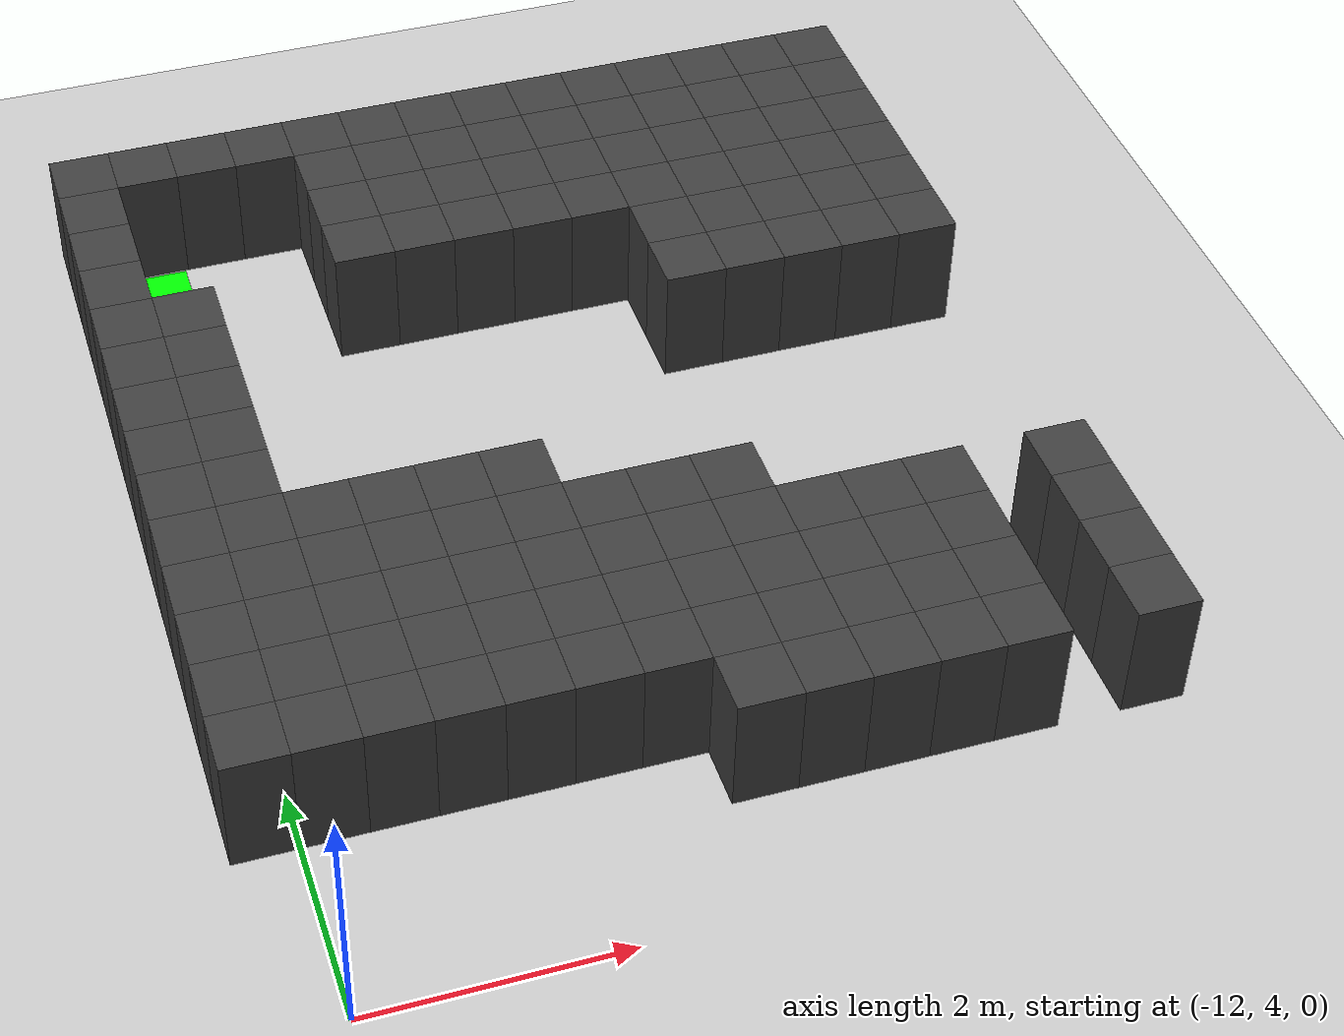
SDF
<sdf version="1.7">
 <world name="map_12356">
  <model name="ground_plane">
   <static>true</static>
   <link name="link">
    <collision name="collision">
     <geometry><plane><normal>0 0 1</normal><size>200 200</size></plane></geometry>
    </collision>
    <visual name="visual">
     <geometry><plane><normal>0 0 1</normal><size>200 200</size></plane></geometry>
     <material><ambient>0.8 0.8 0.8 1</ambient><diffuse>0.8 0.8 0.8 1</diffuse></material>
    </visual>
   </link>
  </model>
  <model name="maze_environment">
   <static>true</static>
   <link name="wall_0">
    <pose>-12.250 12.250 0.500 0 0 0</pose>
    <collision name="col"><geometry><box><size>0.5 0.5 1.0</size></box></geometry></collision>
    <visual name="vis">
     <geometry><box><size>0.5 0.5 1.0</size></box></geometry>
     <material><ambient>0.15 0.15 0.15 1</ambient><diffuse>0.25 0.25 0.25 1</diffuse></material>
    </visual>
   </link>
   <link name="wall_1">
    <pose>-11.750 12.250 0.500 0 0 0</pose>
    <collision name="col"><geometry><box><size>0.5 0.5 1.0</size></box></geometry></collision>
    <visual name="vis">
     <geometry><box><size>0.5 0.5 1.0</size></box></geometry>
     <material><ambient>0.15 0.15 0.15 1</ambient><diffuse>0.25 0.25 0.25 1</diffuse></material>
    </visual>
   </link>
   <link name="wall_2">
    <pose>-11.250 12.250 0.500 0 0 0</pose>
    <collision name="col"><geometry><box><size>0.5 0.5 1.0</size></box></geometry></collision>
    <visual name="vis">
     <geometry><box><size>0.5 0.5 1.0</size></box></geometry>
     <material><ambient>0.15 0.15 0.15 1</ambient><diffuse>0.25 0.25 0.25 1</diffuse></material>
    </visual>
   </link>
   <link name="wall_3">
    <pose>-10.750 12.250 0.500 0 0 0</pose>
    <collision name="col"><geometry><box><size>0.5 0.5 1.0</size></box></geometry></collision>
    <visual name="vis">
     <geometry><box><size>0.5 0.5 1.0</size></box></geometry>
     <material><ambient>0.15 0.15 0.15 1</ambient><diffuse>0.25 0.25 0.25 1</diffuse></material>
    </visual>
   </link>
   <link name="wall_4">
    <pose>-10.250 12.250 0.500 0 0 0</pose>
    <collision name="col"><geometry><box><size>0.5 0.5 1.0</size></box></geometry></collision>
    <visual name="vis">
     <geometry><box><size>0.5 0.5 1.0</size></box></geometry>
     <material><ambient>0.15 0.15 0.15 1</ambient><diffuse>0.25 0.25 0.25 1</diffuse></material>
    </visual>
   </link>
   <link name="wall_5">
    <pose>-9.750 12.250 0.500 0 0 0</pose>
    <collision name="col"><geometry><box><size>0.5 0.5 1.0</size></box></geometry></collision>
    <visual name="vis">
     <geometry><box><size>0.5 0.5 1.0</size></box></geometry>
     <material><ambient>0.15 0.15 0.15 1</ambient><diffuse>0.25 0.25 0.25 1</diffuse></material>
    </visual>
   </link>
   <link name="wall_6">
    <pose>-9.250 12.250 0.500 0 0 0</pose>
    <collision name="col"><geometry><box><size>0.5 0.5 1.0</size></box></geometry></collision>
    <visual name="vis">
     <geometry><box><size>0.5 0.5 1.0</size></box></geometry>
     <material><ambient>0.15 0.15 0.15 1</ambient><diffuse>0.25 0.25 0.25 1</diffuse></material>
    </visual>
   </link>
   <link name="wall_7">
    <pose>-8.750 12.250 0.500 0 0 0</pose>
    <collision name="col"><geometry><box><size>0.5 0.5 1.0</size></box></geometry></collision>
    <visual name="vis">
     <geometry><box><size>0.5 0.5 1.0</size></box></geometry>
     <material><ambient>0.15 0.15 0.15 1</ambient><diffuse>0.25 0.25 0.25 1</diffuse></material>
    </visual>
   </link>
   <link name="wall_8">
    <pose>-8.250 12.250 0.500 0 0 0</pose>
    <collision name="col"><geometry><box><size>0.5 0.5 1.0</size></box></geometry></collision>
    <visual name="vis">
     <geometry><box><size>0.5 0.5 1.0</size></box></geometry>
     <material><ambient>0.15 0.15 0.15 1</ambient><diffuse>0.25 0.25 0.25 1</diffuse></material>
    </visual>
   </link>
   <link name="wall_9">
    <pose>-7.750 12.250 0.500 0 0 0</pose>
    <collision name="col"><geometry><box><size>0.5 0.5 1.0</size></box></geometry></collision>
    <visual name="vis">
     <geometry><box><size>0.5 0.5 1.0</size></box></geometry>
     <material><ambient>0.15 0.15 0.15 1</ambient><diffuse>0.25 0.25 0.25 1</diffuse></material>
    </visual>
   </link>
   <link name="wall_10">
    <pose>-7.250 12.250 0.500 0 0 0</pose>
    <collision name="col"><geometry><box><size>0.5 0.5 1.0</size></box></geometry></collision>
    <visual name="vis">
     <geometry><box><size>0.5 0.5 1.0</size></box></geometry>
     <material><ambient>0.15 0.15 0.15 1</ambient><diffuse>0.25 0.25 0.25 1</diffuse></material>
    </visual>
   </link>
   <link name="wall_11">
    <pose>-6.750 12.250 0.500 0 0 0</pose>
    <collision name="col"><geometry><box><size>0.5 0.5 1.0</size></box></geometry></collision>
    <visual name="vis">
     <geometry><box><size>0.5 0.5 1.0</size></box></geometry>
     <material><ambient>0.15 0.15 0.15 1</ambient><diffuse>0.25 0.25 0.25 1</diffuse></material>
    </visual>
   </link>
   <link name="wall_12">
    <pose>-6.250 12.250 0.500 0 0 0</pose>
    <collision name="col"><geometry><box><size>0.5 0.5 1.0</size></box></geometry></collision>
    <visual name="vis">
     <geometry><box><size>0.5 0.5 1.0</size></box></geometry>
     <material><ambient>0.15 0.15 0.15 1</ambient><diffuse>0.25 0.25 0.25 1</diffuse></material>
    </visual>
   </link>
   <link name="wall_13">
    <pose>-5.750 12.250 0.500 0 0 0</pose>
    <collision name="col"><geometry><box><size>0.5 0.5 1.0</size></box></geometry></collision>
    <visual name="vis">
     <geometry><box><size>0.5 0.5 1.0</size></box></geometry>
     <material><ambient>0.15 0.15 0.15 1</ambient><diffuse>0.25 0.25 0.25 1</diffuse></material>
    </visual>
   </link>
   <link name="wall_50">
    <pose>-12.250 11.750 0.500 0 0 0</pose>
    <collision name="col"><geometry><box><size>0.5 0.5 1.0</size></box></geometry></collision>
    <visual name="vis">
     <geometry><box><size>0.5 0.5 1.0</size></box></geometry>
     <material><ambient>0.15 0.15 0.15 1</ambient><diffuse>0.25 0.25 0.25 1</diffuse></material>
    </visual>
   </link>
   <link name="wall_51">
    <pose>-10.250 11.750 0.500 0 0 0</pose>
    <collision name="col"><geometry><box><size>0.5 0.5 1.0</size></box></geometry></collision>
    <visual name="vis">
     <geometry><box><size>0.5 0.5 1.0</size></box></geometry>
     <material><ambient>0.15 0.15 0.15 1</ambient><diffuse>0.25 0.25 0.25 1</diffuse></material>
    </visual>
   </link>
   <link name="wall_52">
    <pose>-9.750 11.750 0.500 0 0 0</pose>
    <collision name="col"><geometry><box><size>0.5 0.5 1.0</size></box></geometry></collision>
    <visual name="vis">
     <geometry><box><size>0.5 0.5 1.0</size></box></geometry>
     <material><ambient>0.15 0.15 0.15 1</ambient><diffuse>0.25 0.25 0.25 1</diffuse></material>
    </visual>
   </link>
   <link name="wall_53">
    <pose>-9.250 11.750 0.500 0 0 0</pose>
    <collision name="col"><geometry><box><size>0.5 0.5 1.0</size></box></geometry></collision>
    <visual name="vis">
     <geometry><box><size>0.5 0.5 1.0</size></box></geometry>
     <material><ambient>0.15 0.15 0.15 1</ambient><diffuse>0.25 0.25 0.25 1</diffuse></material>
    </visual>
   </link>
   <link name="wall_54">
    <pose>-8.750 11.750 0.500 0 0 0</pose>
    <collision name="col"><geometry><box><size>0.5 0.5 1.0</size></box></geometry></collision>
    <visual name="vis">
     <geometry><box><size>0.5 0.5 1.0</size></box></geometry>
     <material><ambient>0.15 0.15 0.15 1</ambient><diffuse>0.25 0.25 0.25 1</diffuse></material>
    </visual>
   </link>
   <link name="wall_55">
    <pose>-8.250 11.750 0.500 0 0 0</pose>
    <collision name="col"><geometry><box><size>0.5 0.5 1.0</size></box></geometry></collision>
    <visual name="vis">
     <geometry><box><size>0.5 0.5 1.0</size></box></geometry>
     <material><ambient>0.15 0.15 0.15 1</ambient><diffuse>0.25 0.25 0.25 1</diffuse></material>
    </visual>
   </link>
   <link name="wall_56">
    <pose>-7.750 11.750 0.500 0 0 0</pose>
    <collision name="col"><geometry><box><size>0.5 0.5 1.0</size></box></geometry></collision>
    <visual name="vis">
     <geometry><box><size>0.5 0.5 1.0</size></box></geometry>
     <material><ambient>0.15 0.15 0.15 1</ambient><diffuse>0.25 0.25 0.25 1</diffuse></material>
    </visual>
   </link>
   <link name="wall_57">
    <pose>-7.250 11.750 0.500 0 0 0</pose>
    <collision name="col"><geometry><box><size>0.5 0.5 1.0</size></box></geometry></collision>
    <visual name="vis">
     <geometry><box><size>0.5 0.5 1.0</size></box></geometry>
     <material><ambient>0.15 0.15 0.15 1</ambient><diffuse>0.25 0.25 0.25 1</diffuse></material>
    </visual>
   </link>
   <link name="wall_58">
    <pose>-6.750 11.750 0.500 0 0 0</pose>
    <collision name="col"><geometry><box><size>0.5 0.5 1.0</size></box></geometry></collision>
    <visual name="vis">
     <geometry><box><size>0.5 0.5 1.0</size></box></geometry>
     <material><ambient>0.15 0.15 0.15 1</ambient><diffuse>0.25 0.25 0.25 1</diffuse></material>
    </visual>
   </link>
   <link name="wall_59">
    <pose>-6.250 11.750 0.500 0 0 0</pose>
    <collision name="col"><geometry><box><size>0.5 0.5 1.0</size></box></geometry></collision>
    <visual name="vis">
     <geometry><box><size>0.5 0.5 1.0</size></box></geometry>
     <material><ambient>0.15 0.15 0.15 1</ambient><diffuse>0.25 0.25 0.25 1</diffuse></material>
    </visual>
   </link>
   <link name="wall_60">
    <pose>-5.750 11.750 0.500 0 0 0</pose>
    <collision name="col"><geometry><box><size>0.5 0.5 1.0</size></box></geometry></collision>
    <visual name="vis">
     <geometry><box><size>0.5 0.5 1.0</size></box></geometry>
     <material><ambient>0.15 0.15 0.15 1</ambient><diffuse>0.25 0.25 0.25 1</diffuse></material>
    </visual>
   </link>
   <link name="wall_97">
    <pose>-12.250 11.250 0.500 0 0 0</pose>
    <collision name="col"><geometry><box><size>0.5 0.5 1.0</size></box></geometry></collision>
    <visual name="vis">
     <geometry><box><size>0.5 0.5 1.0</size></box></geometry>
     <material><ambient>0.15 0.15 0.15 1</ambient><diffuse>0.25 0.25 0.25 1</diffuse></material>
    </visual>
   </link>
   <link name="wall_98">
    <pose>-10.250 11.250 0.500 0 0 0</pose>
    <collision name="col"><geometry><box><size>0.5 0.5 1.0</size></box></geometry></collision>
    <visual name="vis">
     <geometry><box><size>0.5 0.5 1.0</size></box></geometry>
     <material><ambient>0.15 0.15 0.15 1</ambient><diffuse>0.25 0.25 0.25 1</diffuse></material>
    </visual>
   </link>
   <link name="wall_99">
    <pose>-9.750 11.250 0.500 0 0 0</pose>
    <collision name="col"><geometry><box><size>0.5 0.5 1.0</size></box></geometry></collision>
    <visual name="vis">
     <geometry><box><size>0.5 0.5 1.0</size></box></geometry>
     <material><ambient>0.15 0.15 0.15 1</ambient><diffuse>0.25 0.25 0.25 1</diffuse></material>
    </visual>
   </link>
   <link name="wall_100">
    <pose>-9.250 11.250 0.500 0 0 0</pose>
    <collision name="col"><geometry><box><size>0.5 0.5 1.0</size></box></geometry></collision>
    <visual name="vis">
     <geometry><box><size>0.5 0.5 1.0</size></box></geometry>
     <material><ambient>0.15 0.15 0.15 1</ambient><diffuse>0.25 0.25 0.25 1</diffuse></material>
    </visual>
   </link>
   <link name="wall_101">
    <pose>-8.750 11.250 0.500 0 0 0</pose>
    <collision name="col"><geometry><box><size>0.5 0.5 1.0</size></box></geometry></collision>
    <visual name="vis">
     <geometry><box><size>0.5 0.5 1.0</size></box></geometry>
     <material><ambient>0.15 0.15 0.15 1</ambient><diffuse>0.25 0.25 0.25 1</diffuse></material>
    </visual>
   </link>
   <link name="wall_102">
    <pose>-8.250 11.250 0.500 0 0 0</pose>
    <collision name="col"><geometry><box><size>0.5 0.5 1.0</size></box></geometry></collision>
    <visual name="vis">
     <geometry><box><size>0.5 0.5 1.0</size></box></geometry>
     <material><ambient>0.15 0.15 0.15 1</ambient><diffuse>0.25 0.25 0.25 1</diffuse></material>
    </visual>
   </link>
   <link name="wall_103">
    <pose>-7.750 11.250 0.500 0 0 0</pose>
    <collision name="col"><geometry><box><size>0.5 0.5 1.0</size></box></geometry></collision>
    <visual name="vis">
     <geometry><box><size>0.5 0.5 1.0</size></box></geometry>
     <material><ambient>0.15 0.15 0.15 1</ambient><diffuse>0.25 0.25 0.25 1</diffuse></material>
    </visual>
   </link>
   <link name="wall_104">
    <pose>-7.250 11.250 0.500 0 0 0</pose>
    <collision name="col"><geometry><box><size>0.5 0.5 1.0</size></box></geometry></collision>
    <visual name="vis">
     <geometry><box><size>0.5 0.5 1.0</size></box></geometry>
     <material><ambient>0.15 0.15 0.15 1</ambient><diffuse>0.25 0.25 0.25 1</diffuse></material>
    </visual>
   </link>
   <link name="wall_105">
    <pose>-6.750 11.250 0.500 0 0 0</pose>
    <collision name="col"><geometry><box><size>0.5 0.5 1.0</size></box></geometry></collision>
    <visual name="vis">
     <geometry><box><size>0.5 0.5 1.0</size></box></geometry>
     <material><ambient>0.15 0.15 0.15 1</ambient><diffuse>0.25 0.25 0.25 1</diffuse></material>
    </visual>
   </link>
   <link name="wall_106">
    <pose>-6.250 11.250 0.500 0 0 0</pose>
    <collision name="col"><geometry><box><size>0.5 0.5 1.0</size></box></geometry></collision>
    <visual name="vis">
     <geometry><box><size>0.5 0.5 1.0</size></box></geometry>
     <material><ambient>0.15 0.15 0.15 1</ambient><diffuse>0.25 0.25 0.25 1</diffuse></material>
    </visual>
   </link>
   <link name="wall_107">
    <pose>-5.750 11.250 0.500 0 0 0</pose>
    <collision name="col"><geometry><box><size>0.5 0.5 1.0</size></box></geometry></collision>
    <visual name="vis">
     <geometry><box><size>0.5 0.5 1.0</size></box></geometry>
     <material><ambient>0.15 0.15 0.15 1</ambient><diffuse>0.25 0.25 0.25 1</diffuse></material>
    </visual>
   </link>
   <link name="wall_138">
    <pose>-12.250 10.750 0.500 0 0 0</pose>
    <collision name="col"><geometry><box><size>0.5 0.5 1.0</size></box></geometry></collision>
    <visual name="vis">
     <geometry><box><size>0.5 0.5 1.0</size></box></geometry>
     <material><ambient>0.15 0.15 0.15 1</ambient><diffuse>0.25 0.25 0.25 1</diffuse></material>
    </visual>
   </link>
   <link name="wall_139">
    <pose>-10.250 10.750 0.500 0 0 0</pose>
    <collision name="col"><geometry><box><size>0.5 0.5 1.0</size></box></geometry></collision>
    <visual name="vis">
     <geometry><box><size>0.5 0.5 1.0</size></box></geometry>
     <material><ambient>0.15 0.15 0.15 1</ambient><diffuse>0.25 0.25 0.25 1</diffuse></material>
    </visual>
   </link>
   <link name="wall_140">
    <pose>-9.750 10.750 0.500 0 0 0</pose>
    <collision name="col"><geometry><box><size>0.5 0.5 1.0</size></box></geometry></collision>
    <visual name="vis">
     <geometry><box><size>0.5 0.5 1.0</size></box></geometry>
     <material><ambient>0.15 0.15 0.15 1</ambient><diffuse>0.25 0.25 0.25 1</diffuse></material>
    </visual>
   </link>
   <link name="wall_141">
    <pose>-9.250 10.750 0.500 0 0 0</pose>
    <collision name="col"><geometry><box><size>0.5 0.5 1.0</size></box></geometry></collision>
    <visual name="vis">
     <geometry><box><size>0.5 0.5 1.0</size></box></geometry>
     <material><ambient>0.15 0.15 0.15 1</ambient><diffuse>0.25 0.25 0.25 1</diffuse></material>
    </visual>
   </link>
   <link name="wall_142">
    <pose>-8.750 10.750 0.500 0 0 0</pose>
    <collision name="col"><geometry><box><size>0.5 0.5 1.0</size></box></geometry></collision>
    <visual name="vis">
     <geometry><box><size>0.5 0.5 1.0</size></box></geometry>
     <material><ambient>0.15 0.15 0.15 1</ambient><diffuse>0.25 0.25 0.25 1</diffuse></material>
    </visual>
   </link>
   <link name="wall_143">
    <pose>-8.250 10.750 0.500 0 0 0</pose>
    <collision name="col"><geometry><box><size>0.5 0.5 1.0</size></box></geometry></collision>
    <visual name="vis">
     <geometry><box><size>0.5 0.5 1.0</size></box></geometry>
     <material><ambient>0.15 0.15 0.15 1</ambient><diffuse>0.25 0.25 0.25 1</diffuse></material>
    </visual>
   </link>
   <link name="wall_144">
    <pose>-7.750 10.750 0.500 0 0 0</pose>
    <collision name="col"><geometry><box><size>0.5 0.5 1.0</size></box></geometry></collision>
    <visual name="vis">
     <geometry><box><size>0.5 0.5 1.0</size></box></geometry>
     <material><ambient>0.15 0.15 0.15 1</ambient><diffuse>0.25 0.25 0.25 1</diffuse></material>
    </visual>
   </link>
   <link name="wall_145">
    <pose>-7.250 10.750 0.500 0 0 0</pose>
    <collision name="col"><geometry><box><size>0.5 0.5 1.0</size></box></geometry></collision>
    <visual name="vis">
     <geometry><box><size>0.5 0.5 1.0</size></box></geometry>
     <material><ambient>0.15 0.15 0.15 1</ambient><diffuse>0.25 0.25 0.25 1</diffuse></material>
    </visual>
   </link>
   <link name="wall_146">
    <pose>-6.750 10.750 0.500 0 0 0</pose>
    <collision name="col"><geometry><box><size>0.5 0.5 1.0</size></box></geometry></collision>
    <visual name="vis">
     <geometry><box><size>0.5 0.5 1.0</size></box></geometry>
     <material><ambient>0.15 0.15 0.15 1</ambient><diffuse>0.25 0.25 0.25 1</diffuse></material>
    </visual>
   </link>
   <link name="wall_147">
    <pose>-6.250 10.750 0.500 0 0 0</pose>
    <collision name="col"><geometry><box><size>0.5 0.5 1.0</size></box></geometry></collision>
    <visual name="vis">
     <geometry><box><size>0.5 0.5 1.0</size></box></geometry>
     <material><ambient>0.15 0.15 0.15 1</ambient><diffuse>0.25 0.25 0.25 1</diffuse></material>
    </visual>
   </link>
   <link name="wall_148">
    <pose>-5.750 10.750 0.500 0 0 0</pose>
    <collision name="col"><geometry><box><size>0.5 0.5 1.0</size></box></geometry></collision>
    <visual name="vis">
     <geometry><box><size>0.5 0.5 1.0</size></box></geometry>
     <material><ambient>0.15 0.15 0.15 1</ambient><diffuse>0.25 0.25 0.25 1</diffuse></material>
    </visual>
   </link>
   <link name="wall_179">
    <pose>-12.250 10.250 0.500 0 0 0</pose>
    <collision name="col"><geometry><box><size>0.5 0.5 1.0</size></box></geometry></collision>
    <visual name="vis">
     <geometry><box><size>0.5 0.5 1.0</size></box></geometry>
     <material><ambient>0.15 0.15 0.15 1</ambient><diffuse>0.25 0.25 0.25 1</diffuse></material>
    </visual>
   </link>
   <link name="wall_180">
    <pose>-11.750 10.250 0.500 0 0 0</pose>
    <collision name="col"><geometry><box><size>0.5 0.5 1.0</size></box></geometry></collision>
    <visual name="vis">
     <geometry><box><size>0.5 0.5 1.0</size></box></geometry>
     <material><ambient>0.15 0.15 0.15 1</ambient><diffuse>0.25 0.25 0.25 1</diffuse></material>
    </visual>
   </link>
   <link name="wall_181">
    <pose>-7.750 10.250 0.500 0 0 0</pose>
    <collision name="col"><geometry><box><size>0.5 0.5 1.0</size></box></geometry></collision>
    <visual name="vis">
     <geometry><box><size>0.5 0.5 1.0</size></box></geometry>
     <material><ambient>0.15 0.15 0.15 1</ambient><diffuse>0.25 0.25 0.25 1</diffuse></material>
    </visual>
   </link>
   <link name="wall_182">
    <pose>-7.250 10.250 0.500 0 0 0</pose>
    <collision name="col"><geometry><box><size>0.5 0.5 1.0</size></box></geometry></collision>
    <visual name="vis">
     <geometry><box><size>0.5 0.5 1.0</size></box></geometry>
     <material><ambient>0.15 0.15 0.15 1</ambient><diffuse>0.25 0.25 0.25 1</diffuse></material>
    </visual>
   </link>
   <link name="wall_183">
    <pose>-6.750 10.250 0.500 0 0 0</pose>
    <collision name="col"><geometry><box><size>0.5 0.5 1.0</size></box></geometry></collision>
    <visual name="vis">
     <geometry><box><size>0.5 0.5 1.0</size></box></geometry>
     <material><ambient>0.15 0.15 0.15 1</ambient><diffuse>0.25 0.25 0.25 1</diffuse></material>
    </visual>
   </link>
   <link name="wall_184">
    <pose>-6.250 10.250 0.500 0 0 0</pose>
    <collision name="col"><geometry><box><size>0.5 0.5 1.0</size></box></geometry></collision>
    <visual name="vis">
     <geometry><box><size>0.5 0.5 1.0</size></box></geometry>
     <material><ambient>0.15 0.15 0.15 1</ambient><diffuse>0.25 0.25 0.25 1</diffuse></material>
    </visual>
   </link>
   <link name="wall_185">
    <pose>-5.750 10.250 0.500 0 0 0</pose>
    <collision name="col"><geometry><box><size>0.5 0.5 1.0</size></box></geometry></collision>
    <visual name="vis">
     <geometry><box><size>0.5 0.5 1.0</size></box></geometry>
     <material><ambient>0.15 0.15 0.15 1</ambient><diffuse>0.25 0.25 0.25 1</diffuse></material>
    </visual>
   </link>
   <link name="wall_211">
    <pose>-12.250 9.750 0.500 0 0 0</pose>
    <collision name="col"><geometry><box><size>0.5 0.5 1.0</size></box></geometry></collision>
    <visual name="vis">
     <geometry><box><size>0.5 0.5 1.0</size></box></geometry>
     <material><ambient>0.15 0.15 0.15 1</ambient><diffuse>0.25 0.25 0.25 1</diffuse></material>
    </visual>
   </link>
   <link name="wall_212">
    <pose>-11.750 9.750 0.500 0 0 0</pose>
    <collision name="col"><geometry><box><size>0.5 0.5 1.0</size></box></geometry></collision>
    <visual name="vis">
     <geometry><box><size>0.5 0.5 1.0</size></box></geometry>
     <material><ambient>0.15 0.15 0.15 1</ambient><diffuse>0.25 0.25 0.25 1</diffuse></material>
    </visual>
   </link>
   <link name="wall_213">
    <pose>-7.750 9.750 0.500 0 0 0</pose>
    <collision name="col"><geometry><box><size>0.5 0.5 1.0</size></box></geometry></collision>
    <visual name="vis">
     <geometry><box><size>0.5 0.5 1.0</size></box></geometry>
     <material><ambient>0.15 0.15 0.15 1</ambient><diffuse>0.25 0.25 0.25 1</diffuse></material>
    </visual>
   </link>
   <link name="wall_214">
    <pose>-7.250 9.750 0.500 0 0 0</pose>
    <collision name="col"><geometry><box><size>0.5 0.5 1.0</size></box></geometry></collision>
    <visual name="vis">
     <geometry><box><size>0.5 0.5 1.0</size></box></geometry>
     <material><ambient>0.15 0.15 0.15 1</ambient><diffuse>0.25 0.25 0.25 1</diffuse></material>
    </visual>
   </link>
   <link name="wall_215">
    <pose>-6.750 9.750 0.500 0 0 0</pose>
    <collision name="col"><geometry><box><size>0.5 0.5 1.0</size></box></geometry></collision>
    <visual name="vis">
     <geometry><box><size>0.5 0.5 1.0</size></box></geometry>
     <material><ambient>0.15 0.15 0.15 1</ambient><diffuse>0.25 0.25 0.25 1</diffuse></material>
    </visual>
   </link>
   <link name="wall_216">
    <pose>-6.250 9.750 0.500 0 0 0</pose>
    <collision name="col"><geometry><box><size>0.5 0.5 1.0</size></box></geometry></collision>
    <visual name="vis">
     <geometry><box><size>0.5 0.5 1.0</size></box></geometry>
     <material><ambient>0.15 0.15 0.15 1</ambient><diffuse>0.25 0.25 0.25 1</diffuse></material>
    </visual>
   </link>
   <link name="wall_217">
    <pose>-5.750 9.750 0.500 0 0 0</pose>
    <collision name="col"><geometry><box><size>0.5 0.5 1.0</size></box></geometry></collision>
    <visual name="vis">
     <geometry><box><size>0.5 0.5 1.0</size></box></geometry>
     <material><ambient>0.15 0.15 0.15 1</ambient><diffuse>0.25 0.25 0.25 1</diffuse></material>
    </visual>
   </link>
   <link name="wall_243">
    <pose>-12.250 9.250 0.500 0 0 0</pose>
    <collision name="col"><geometry><box><size>0.5 0.5 1.0</size></box></geometry></collision>
    <visual name="vis">
     <geometry><box><size>0.5 0.5 1.0</size></box></geometry>
     <material><ambient>0.15 0.15 0.15 1</ambient><diffuse>0.25 0.25 0.25 1</diffuse></material>
    </visual>
   </link>
   <link name="wall_244">
    <pose>-11.750 9.250 0.500 0 0 0</pose>
    <collision name="col"><geometry><box><size>0.5 0.5 1.0</size></box></geometry></collision>
    <visual name="vis">
     <geometry><box><size>0.5 0.5 1.0</size></box></geometry>
     <material><ambient>0.15 0.15 0.15 1</ambient><diffuse>0.25 0.25 0.25 1</diffuse></material>
    </visual>
   </link>
   <link name="wall_268">
    <pose>-12.250 8.750 0.500 0 0 0</pose>
    <collision name="col"><geometry><box><size>0.5 0.5 1.0</size></box></geometry></collision>
    <visual name="vis">
     <geometry><box><size>0.5 0.5 1.0</size></box></geometry>
     <material><ambient>0.15 0.15 0.15 1</ambient><diffuse>0.25 0.25 0.25 1</diffuse></material>
    </visual>
   </link>
   <link name="wall_269">
    <pose>-11.750 8.750 0.500 0 0 0</pose>
    <collision name="col"><geometry><box><size>0.5 0.5 1.0</size></box></geometry></collision>
    <visual name="vis">
     <geometry><box><size>0.5 0.5 1.0</size></box></geometry>
     <material><ambient>0.15 0.15 0.15 1</ambient><diffuse>0.25 0.25 0.25 1</diffuse></material>
    </visual>
   </link>
   <link name="wall_292">
    <pose>-12.250 8.250 0.500 0 0 0</pose>
    <collision name="col"><geometry><box><size>0.5 0.5 1.0</size></box></geometry></collision>
    <visual name="vis">
     <geometry><box><size>0.5 0.5 1.0</size></box></geometry>
     <material><ambient>0.15 0.15 0.15 1</ambient><diffuse>0.25 0.25 0.25 1</diffuse></material>
    </visual>
   </link>
   <link name="wall_293">
    <pose>-11.750 8.250 0.500 0 0 0</pose>
    <collision name="col"><geometry><box><size>0.5 0.5 1.0</size></box></geometry></collision>
    <visual name="vis">
     <geometry><box><size>0.5 0.5 1.0</size></box></geometry>
     <material><ambient>0.15 0.15 0.15 1</ambient><diffuse>0.25 0.25 0.25 1</diffuse></material>
    </visual>
   </link>
   <link name="wall_317">
    <pose>-12.250 7.750 0.500 0 0 0</pose>
    <collision name="col"><geometry><box><size>0.5 0.5 1.0</size></box></geometry></collision>
    <visual name="vis">
     <geometry><box><size>0.5 0.5 1.0</size></box></geometry>
     <material><ambient>0.15 0.15 0.15 1</ambient><diffuse>0.25 0.25 0.25 1</diffuse></material>
    </visual>
   </link>
   <link name="wall_318">
    <pose>-11.750 7.750 0.500 0 0 0</pose>
    <collision name="col"><geometry><box><size>0.5 0.5 1.0</size></box></geometry></collision>
    <visual name="vis">
     <geometry><box><size>0.5 0.5 1.0</size></box></geometry>
     <material><ambient>0.15 0.15 0.15 1</ambient><diffuse>0.25 0.25 0.25 1</diffuse></material>
    </visual>
   </link>
   <link name="wall_319">
    <pose>-11.250 7.750 0.500 0 0 0</pose>
    <collision name="col"><geometry><box><size>0.5 0.5 1.0</size></box></geometry></collision>
    <visual name="vis">
     <geometry><box><size>0.5 0.5 1.0</size></box></geometry>
     <material><ambient>0.15 0.15 0.15 1</ambient><diffuse>0.25 0.25 0.25 1</diffuse></material>
    </visual>
   </link>
   <link name="wall_320">
    <pose>-10.750 7.750 0.500 0 0 0</pose>
    <collision name="col"><geometry><box><size>0.5 0.5 1.0</size></box></geometry></collision>
    <visual name="vis">
     <geometry><box><size>0.5 0.5 1.0</size></box></geometry>
     <material><ambient>0.15 0.15 0.15 1</ambient><diffuse>0.25 0.25 0.25 1</diffuse></material>
    </visual>
   </link>
   <link name="wall_321">
    <pose>-10.250 7.750 0.500 0 0 0</pose>
    <collision name="col"><geometry><box><size>0.5 0.5 1.0</size></box></geometry></collision>
    <visual name="vis">
     <geometry><box><size>0.5 0.5 1.0</size></box></geometry>
     <material><ambient>0.15 0.15 0.15 1</ambient><diffuse>0.25 0.25 0.25 1</diffuse></material>
    </visual>
   </link>
   <link name="wall_322">
    <pose>-9.750 7.750 0.500 0 0 0</pose>
    <collision name="col"><geometry><box><size>0.5 0.5 1.0</size></box></geometry></collision>
    <visual name="vis">
     <geometry><box><size>0.5 0.5 1.0</size></box></geometry>
     <material><ambient>0.15 0.15 0.15 1</ambient><diffuse>0.25 0.25 0.25 1</diffuse></material>
    </visual>
   </link>
   <link name="wall_346">
    <pose>-12.250 7.250 0.500 0 0 0</pose>
    <collision name="col"><geometry><box><size>0.5 0.5 1.0</size></box></geometry></collision>
    <visual name="vis">
     <geometry><box><size>0.5 0.5 1.0</size></box></geometry>
     <material><ambient>0.15 0.15 0.15 1</ambient><diffuse>0.25 0.25 0.25 1</diffuse></material>
    </visual>
   </link>
   <link name="wall_347">
    <pose>-11.750 7.250 0.500 0 0 0</pose>
    <collision name="col"><geometry><box><size>0.5 0.5 1.0</size></box></geometry></collision>
    <visual name="vis">
     <geometry><box><size>0.5 0.5 1.0</size></box></geometry>
     <material><ambient>0.15 0.15 0.15 1</ambient><diffuse>0.25 0.25 0.25 1</diffuse></material>
    </visual>
   </link>
   <link name="wall_348">
    <pose>-11.250 7.250 0.500 0 0 0</pose>
    <collision name="col"><geometry><box><size>0.5 0.5 1.0</size></box></geometry></collision>
    <visual name="vis">
     <geometry><box><size>0.5 0.5 1.0</size></box></geometry>
     <material><ambient>0.15 0.15 0.15 1</ambient><diffuse>0.25 0.25 0.25 1</diffuse></material>
    </visual>
   </link>
   <link name="wall_349">
    <pose>-10.750 7.250 0.500 0 0 0</pose>
    <collision name="col"><geometry><box><size>0.5 0.5 1.0</size></box></geometry></collision>
    <visual name="vis">
     <geometry><box><size>0.5 0.5 1.0</size></box></geometry>
     <material><ambient>0.15 0.15 0.15 1</ambient><diffuse>0.25 0.25 0.25 1</diffuse></material>
    </visual>
   </link>
   <link name="wall_350">
    <pose>-10.250 7.250 0.500 0 0 0</pose>
    <collision name="col"><geometry><box><size>0.5 0.5 1.0</size></box></geometry></collision>
    <visual name="vis">
     <geometry><box><size>0.5 0.5 1.0</size></box></geometry>
     <material><ambient>0.15 0.15 0.15 1</ambient><diffuse>0.25 0.25 0.25 1</diffuse></material>
    </visual>
   </link>
   <link name="wall_351">
    <pose>-9.750 7.250 0.500 0 0 0</pose>
    <collision name="col"><geometry><box><size>0.5 0.5 1.0</size></box></geometry></collision>
    <visual name="vis">
     <geometry><box><size>0.5 0.5 1.0</size></box></geometry>
     <material><ambient>0.15 0.15 0.15 1</ambient><diffuse>0.25 0.25 0.25 1</diffuse></material>
    </visual>
   </link>
   <link name="wall_352">
    <pose>-9.250 7.250 0.500 0 0 0</pose>
    <collision name="col"><geometry><box><size>0.5 0.5 1.0</size></box></geometry></collision>
    <visual name="vis">
     <geometry><box><size>0.5 0.5 1.0</size></box></geometry>
     <material><ambient>0.15 0.15 0.15 1</ambient><diffuse>0.25 0.25 0.25 1</diffuse></material>
    </visual>
   </link>
   <link name="wall_353">
    <pose>-8.750 7.250 0.500 0 0 0</pose>
    <collision name="col"><geometry><box><size>0.5 0.5 1.0</size></box></geometry></collision>
    <visual name="vis">
     <geometry><box><size>0.5 0.5 1.0</size></box></geometry>
     <material><ambient>0.15 0.15 0.15 1</ambient><diffuse>0.25 0.25 0.25 1</diffuse></material>
    </visual>
   </link>
   <link name="wall_354">
    <pose>-8.250 7.250 0.500 0 0 0</pose>
    <collision name="col"><geometry><box><size>0.5 0.5 1.0</size></box></geometry></collision>
    <visual name="vis">
     <geometry><box><size>0.5 0.5 1.0</size></box></geometry>
     <material><ambient>0.15 0.15 0.15 1</ambient><diffuse>0.25 0.25 0.25 1</diffuse></material>
    </visual>
   </link>
   <link name="wall_382">
    <pose>-12.250 6.750 0.500 0 0 0</pose>
    <collision name="col"><geometry><box><size>0.5 0.5 1.0</size></box></geometry></collision>
    <visual name="vis">
     <geometry><box><size>0.5 0.5 1.0</size></box></geometry>
     <material><ambient>0.15 0.15 0.15 1</ambient><diffuse>0.25 0.25 0.25 1</diffuse></material>
    </visual>
   </link>
   <link name="wall_383">
    <pose>-11.750 6.750 0.500 0 0 0</pose>
    <collision name="col"><geometry><box><size>0.5 0.5 1.0</size></box></geometry></collision>
    <visual name="vis">
     <geometry><box><size>0.5 0.5 1.0</size></box></geometry>
     <material><ambient>0.15 0.15 0.15 1</ambient><diffuse>0.25 0.25 0.25 1</diffuse></material>
    </visual>
   </link>
   <link name="wall_384">
    <pose>-11.250 6.750 0.500 0 0 0</pose>
    <collision name="col"><geometry><box><size>0.5 0.5 1.0</size></box></geometry></collision>
    <visual name="vis">
     <geometry><box><size>0.5 0.5 1.0</size></box></geometry>
     <material><ambient>0.15 0.15 0.15 1</ambient><diffuse>0.25 0.25 0.25 1</diffuse></material>
    </visual>
   </link>
   <link name="wall_385">
    <pose>-10.750 6.750 0.500 0 0 0</pose>
    <collision name="col"><geometry><box><size>0.5 0.5 1.0</size></box></geometry></collision>
    <visual name="vis">
     <geometry><box><size>0.5 0.5 1.0</size></box></geometry>
     <material><ambient>0.15 0.15 0.15 1</ambient><diffuse>0.25 0.25 0.25 1</diffuse></material>
    </visual>
   </link>
   <link name="wall_386">
    <pose>-10.250 6.750 0.500 0 0 0</pose>
    <collision name="col"><geometry><box><size>0.5 0.5 1.0</size></box></geometry></collision>
    <visual name="vis">
     <geometry><box><size>0.5 0.5 1.0</size></box></geometry>
     <material><ambient>0.15 0.15 0.15 1</ambient><diffuse>0.25 0.25 0.25 1</diffuse></material>
    </visual>
   </link>
   <link name="wall_387">
    <pose>-9.750 6.750 0.500 0 0 0</pose>
    <collision name="col"><geometry><box><size>0.5 0.5 1.0</size></box></geometry></collision>
    <visual name="vis">
     <geometry><box><size>0.5 0.5 1.0</size></box></geometry>
     <material><ambient>0.15 0.15 0.15 1</ambient><diffuse>0.25 0.25 0.25 1</diffuse></material>
    </visual>
   </link>
   <link name="wall_388">
    <pose>-9.250 6.750 0.500 0 0 0</pose>
    <collision name="col"><geometry><box><size>0.5 0.5 1.0</size></box></geometry></collision>
    <visual name="vis">
     <geometry><box><size>0.5 0.5 1.0</size></box></geometry>
     <material><ambient>0.15 0.15 0.15 1</ambient><diffuse>0.25 0.25 0.25 1</diffuse></material>
    </visual>
   </link>
   <link name="wall_389">
    <pose>-8.750 6.750 0.500 0 0 0</pose>
    <collision name="col"><geometry><box><size>0.5 0.5 1.0</size></box></geometry></collision>
    <visual name="vis">
     <geometry><box><size>0.5 0.5 1.0</size></box></geometry>
     <material><ambient>0.15 0.15 0.15 1</ambient><diffuse>0.25 0.25 0.25 1</diffuse></material>
    </visual>
   </link>
   <link name="wall_390">
    <pose>-8.250 6.750 0.500 0 0 0</pose>
    <collision name="col"><geometry><box><size>0.5 0.5 1.0</size></box></geometry></collision>
    <visual name="vis">
     <geometry><box><size>0.5 0.5 1.0</size></box></geometry>
     <material><ambient>0.15 0.15 0.15 1</ambient><diffuse>0.25 0.25 0.25 1</diffuse></material>
    </visual>
   </link>
   <link name="wall_391">
    <pose>-7.750 6.750 0.500 0 0 0</pose>
    <collision name="col"><geometry><box><size>0.5 0.5 1.0</size></box></geometry></collision>
    <visual name="vis">
     <geometry><box><size>0.5 0.5 1.0</size></box></geometry>
     <material><ambient>0.15 0.15 0.15 1</ambient><diffuse>0.25 0.25 0.25 1</diffuse></material>
    </visual>
   </link>
   <link name="wall_392">
    <pose>-7.250 6.750 0.500 0 0 0</pose>
    <collision name="col"><geometry><box><size>0.5 0.5 1.0</size></box></geometry></collision>
    <visual name="vis">
     <geometry><box><size>0.5 0.5 1.0</size></box></geometry>
     <material><ambient>0.15 0.15 0.15 1</ambient><diffuse>0.25 0.25 0.25 1</diffuse></material>
    </visual>
   </link>
   <link name="wall_393">
    <pose>-6.750 6.750 0.500 0 0 0</pose>
    <collision name="col"><geometry><box><size>0.5 0.5 1.0</size></box></geometry></collision>
    <visual name="vis">
     <geometry><box><size>0.5 0.5 1.0</size></box></geometry>
     <material><ambient>0.15 0.15 0.15 1</ambient><diffuse>0.25 0.25 0.25 1</diffuse></material>
    </visual>
   </link>
   <link name="wall_394">
    <pose>-5.750 6.750 0.500 0 0 0</pose>
    <collision name="col"><geometry><box><size>0.5 0.5 1.0</size></box></geometry></collision>
    <visual name="vis">
     <geometry><box><size>0.5 0.5 1.0</size></box></geometry>
     <material><ambient>0.15 0.15 0.15 1</ambient><diffuse>0.25 0.25 0.25 1</diffuse></material>
    </visual>
   </link>
   <link name="wall_426">
    <pose>-12.250 6.250 0.500 0 0 0</pose>
    <collision name="col"><geometry><box><size>0.5 0.5 1.0</size></box></geometry></collision>
    <visual name="vis">
     <geometry><box><size>0.5 0.5 1.0</size></box></geometry>
     <material><ambient>0.15 0.15 0.15 1</ambient><diffuse>0.25 0.25 0.25 1</diffuse></material>
    </visual>
   </link>
   <link name="wall_427">
    <pose>-11.750 6.250 0.500 0 0 0</pose>
    <collision name="col"><geometry><box><size>0.5 0.5 1.0</size></box></geometry></collision>
    <visual name="vis">
     <geometry><box><size>0.5 0.5 1.0</size></box></geometry>
     <material><ambient>0.15 0.15 0.15 1</ambient><diffuse>0.25 0.25 0.25 1</diffuse></material>
    </visual>
   </link>
   <link name="wall_428">
    <pose>-11.250 6.250 0.500 0 0 0</pose>
    <collision name="col"><geometry><box><size>0.5 0.5 1.0</size></box></geometry></collision>
    <visual name="vis">
     <geometry><box><size>0.5 0.5 1.0</size></box></geometry>
     <material><ambient>0.15 0.15 0.15 1</ambient><diffuse>0.25 0.25 0.25 1</diffuse></material>
    </visual>
   </link>
   <link name="wall_429">
    <pose>-10.750 6.250 0.500 0 0 0</pose>
    <collision name="col"><geometry><box><size>0.5 0.5 1.0</size></box></geometry></collision>
    <visual name="vis">
     <geometry><box><size>0.5 0.5 1.0</size></box></geometry>
     <material><ambient>0.15 0.15 0.15 1</ambient><diffuse>0.25 0.25 0.25 1</diffuse></material>
    </visual>
   </link>
   <link name="wall_430">
    <pose>-10.250 6.250 0.500 0 0 0</pose>
    <collision name="col"><geometry><box><size>0.5 0.5 1.0</size></box></geometry></collision>
    <visual name="vis">
     <geometry><box><size>0.5 0.5 1.0</size></box></geometry>
     <material><ambient>0.15 0.15 0.15 1</ambient><diffuse>0.25 0.25 0.25 1</diffuse></material>
    </visual>
   </link>
   <link name="wall_431">
    <pose>-9.750 6.250 0.500 0 0 0</pose>
    <collision name="col"><geometry><box><size>0.5 0.5 1.0</size></box></geometry></collision>
    <visual name="vis">
     <geometry><box><size>0.5 0.5 1.0</size></box></geometry>
     <material><ambient>0.15 0.15 0.15 1</ambient><diffuse>0.25 0.25 0.25 1</diffuse></material>
    </visual>
   </link>
   <link name="wall_432">
    <pose>-9.250 6.250 0.500 0 0 0</pose>
    <collision name="col"><geometry><box><size>0.5 0.5 1.0</size></box></geometry></collision>
    <visual name="vis">
     <geometry><box><size>0.5 0.5 1.0</size></box></geometry>
     <material><ambient>0.15 0.15 0.15 1</ambient><diffuse>0.25 0.25 0.25 1</diffuse></material>
    </visual>
   </link>
   <link name="wall_433">
    <pose>-8.750 6.250 0.500 0 0 0</pose>
    <collision name="col"><geometry><box><size>0.5 0.5 1.0</size></box></geometry></collision>
    <visual name="vis">
     <geometry><box><size>0.5 0.5 1.0</size></box></geometry>
     <material><ambient>0.15 0.15 0.15 1</ambient><diffuse>0.25 0.25 0.25 1</diffuse></material>
    </visual>
   </link>
   <link name="wall_434">
    <pose>-8.250 6.250 0.500 0 0 0</pose>
    <collision name="col"><geometry><box><size>0.5 0.5 1.0</size></box></geometry></collision>
    <visual name="vis">
     <geometry><box><size>0.5 0.5 1.0</size></box></geometry>
     <material><ambient>0.15 0.15 0.15 1</ambient><diffuse>0.25 0.25 0.25 1</diffuse></material>
    </visual>
   </link>
   <link name="wall_435">
    <pose>-7.750 6.250 0.500 0 0 0</pose>
    <collision name="col"><geometry><box><size>0.5 0.5 1.0</size></box></geometry></collision>
    <visual name="vis">
     <geometry><box><size>0.5 0.5 1.0</size></box></geometry>
     <material><ambient>0.15 0.15 0.15 1</ambient><diffuse>0.25 0.25 0.25 1</diffuse></material>
    </visual>
   </link>
   <link name="wall_436">
    <pose>-7.250 6.250 0.500 0 0 0</pose>
    <collision name="col"><geometry><box><size>0.5 0.5 1.0</size></box></geometry></collision>
    <visual name="vis">
     <geometry><box><size>0.5 0.5 1.0</size></box></geometry>
     <material><ambient>0.15 0.15 0.15 1</ambient><diffuse>0.25 0.25 0.25 1</diffuse></material>
    </visual>
   </link>
   <link name="wall_437">
    <pose>-6.750 6.250 0.500 0 0 0</pose>
    <collision name="col"><geometry><box><size>0.5 0.5 1.0</size></box></geometry></collision>
    <visual name="vis">
     <geometry><box><size>0.5 0.5 1.0</size></box></geometry>
     <material><ambient>0.15 0.15 0.15 1</ambient><diffuse>0.25 0.25 0.25 1</diffuse></material>
    </visual>
   </link>
   <link name="wall_438">
    <pose>-5.750 6.250 0.500 0 0 0</pose>
    <collision name="col"><geometry><box><size>0.5 0.5 1.0</size></box></geometry></collision>
    <visual name="vis">
     <geometry><box><size>0.5 0.5 1.0</size></box></geometry>
     <material><ambient>0.15 0.15 0.15 1</ambient><diffuse>0.25 0.25 0.25 1</diffuse></material>
    </visual>
   </link>
   <link name="wall_470">
    <pose>-12.250 5.750 0.500 0 0 0</pose>
    <collision name="col"><geometry><box><size>0.5 0.5 1.0</size></box></geometry></collision>
    <visual name="vis">
     <geometry><box><size>0.5 0.5 1.0</size></box></geometry>
     <material><ambient>0.15 0.15 0.15 1</ambient><diffuse>0.25 0.25 0.25 1</diffuse></material>
    </visual>
   </link>
   <link name="wall_471">
    <pose>-11.750 5.750 0.500 0 0 0</pose>
    <collision name="col"><geometry><box><size>0.5 0.5 1.0</size></box></geometry></collision>
    <visual name="vis">
     <geometry><box><size>0.5 0.5 1.0</size></box></geometry>
     <material><ambient>0.15 0.15 0.15 1</ambient><diffuse>0.25 0.25 0.25 1</diffuse></material>
    </visual>
   </link>
   <link name="wall_472">
    <pose>-11.250 5.750 0.500 0 0 0</pose>
    <collision name="col"><geometry><box><size>0.5 0.5 1.0</size></box></geometry></collision>
    <visual name="vis">
     <geometry><box><size>0.5 0.5 1.0</size></box></geometry>
     <material><ambient>0.15 0.15 0.15 1</ambient><diffuse>0.25 0.25 0.25 1</diffuse></material>
    </visual>
   </link>
   <link name="wall_473">
    <pose>-10.750 5.750 0.500 0 0 0</pose>
    <collision name="col"><geometry><box><size>0.5 0.5 1.0</size></box></geometry></collision>
    <visual name="vis">
     <geometry><box><size>0.5 0.5 1.0</size></box></geometry>
     <material><ambient>0.15 0.15 0.15 1</ambient><diffuse>0.25 0.25 0.25 1</diffuse></material>
    </visual>
   </link>
   <link name="wall_474">
    <pose>-10.250 5.750 0.500 0 0 0</pose>
    <collision name="col"><geometry><box><size>0.5 0.5 1.0</size></box></geometry></collision>
    <visual name="vis">
     <geometry><box><size>0.5 0.5 1.0</size></box></geometry>
     <material><ambient>0.15 0.15 0.15 1</ambient><diffuse>0.25 0.25 0.25 1</diffuse></material>
    </visual>
   </link>
   <link name="wall_475">
    <pose>-9.750 5.750 0.500 0 0 0</pose>
    <collision name="col"><geometry><box><size>0.5 0.5 1.0</size></box></geometry></collision>
    <visual name="vis">
     <geometry><box><size>0.5 0.5 1.0</size></box></geometry>
     <material><ambient>0.15 0.15 0.15 1</ambient><diffuse>0.25 0.25 0.25 1</diffuse></material>
    </visual>
   </link>
   <link name="wall_476">
    <pose>-9.250 5.750 0.500 0 0 0</pose>
    <collision name="col"><geometry><box><size>0.5 0.5 1.0</size></box></geometry></collision>
    <visual name="vis">
     <geometry><box><size>0.5 0.5 1.0</size></box></geometry>
     <material><ambient>0.15 0.15 0.15 1</ambient><diffuse>0.25 0.25 0.25 1</diffuse></material>
    </visual>
   </link>
   <link name="wall_477">
    <pose>-8.750 5.750 0.500 0 0 0</pose>
    <collision name="col"><geometry><box><size>0.5 0.5 1.0</size></box></geometry></collision>
    <visual name="vis">
     <geometry><box><size>0.5 0.5 1.0</size></box></geometry>
     <material><ambient>0.15 0.15 0.15 1</ambient><diffuse>0.25 0.25 0.25 1</diffuse></material>
    </visual>
   </link>
   <link name="wall_478">
    <pose>-8.250 5.750 0.500 0 0 0</pose>
    <collision name="col"><geometry><box><size>0.5 0.5 1.0</size></box></geometry></collision>
    <visual name="vis">
     <geometry><box><size>0.5 0.5 1.0</size></box></geometry>
     <material><ambient>0.15 0.15 0.15 1</ambient><diffuse>0.25 0.25 0.25 1</diffuse></material>
    </visual>
   </link>
   <link name="wall_479">
    <pose>-7.750 5.750 0.500 0 0 0</pose>
    <collision name="col"><geometry><box><size>0.5 0.5 1.0</size></box></geometry></collision>
    <visual name="vis">
     <geometry><box><size>0.5 0.5 1.0</size></box></geometry>
     <material><ambient>0.15 0.15 0.15 1</ambient><diffuse>0.25 0.25 0.25 1</diffuse></material>
    </visual>
   </link>
   <link name="wall_480">
    <pose>-7.250 5.750 0.500 0 0 0</pose>
    <collision name="col"><geometry><box><size>0.5 0.5 1.0</size></box></geometry></collision>
    <visual name="vis">
     <geometry><box><size>0.5 0.5 1.0</size></box></geometry>
     <material><ambient>0.15 0.15 0.15 1</ambient><diffuse>0.25 0.25 0.25 1</diffuse></material>
    </visual>
   </link>
   <link name="wall_481">
    <pose>-6.750 5.750 0.500 0 0 0</pose>
    <collision name="col"><geometry><box><size>0.5 0.5 1.0</size></box></geometry></collision>
    <visual name="vis">
     <geometry><box><size>0.5 0.5 1.0</size></box></geometry>
     <material><ambient>0.15 0.15 0.15 1</ambient><diffuse>0.25 0.25 0.25 1</diffuse></material>
    </visual>
   </link>
   <link name="wall_482">
    <pose>-5.750 5.750 0.500 0 0 0</pose>
    <collision name="col"><geometry><box><size>0.5 0.5 1.0</size></box></geometry></collision>
    <visual name="vis">
     <geometry><box><size>0.5 0.5 1.0</size></box></geometry>
     <material><ambient>0.15 0.15 0.15 1</ambient><diffuse>0.25 0.25 0.25 1</diffuse></material>
    </visual>
   </link>
   <link name="wall_521">
    <pose>-8.750 5.250 0.500 0 0 0</pose>
    <collision name="col"><geometry><box><size>0.5 0.5 1.0</size></box></geometry></collision>
    <visual name="vis">
     <geometry><box><size>0.5 0.5 1.0</size></box></geometry>
     <material><ambient>0.15 0.15 0.15 1</ambient><diffuse>0.25 0.25 0.25 1</diffuse></material>
    </visual>
   </link>
   <link name="wall_522">
    <pose>-8.250 5.250 0.500 0 0 0</pose>
    <collision name="col"><geometry><box><size>0.5 0.5 1.0</size></box></geometry></collision>
    <visual name="vis">
     <geometry><box><size>0.5 0.5 1.0</size></box></geometry>
     <material><ambient>0.15 0.15 0.15 1</ambient><diffuse>0.25 0.25 0.25 1</diffuse></material>
    </visual>
   </link>
   <link name="wall_523">
    <pose>-7.750 5.250 0.500 0 0 0</pose>
    <collision name="col"><geometry><box><size>0.5 0.5 1.0</size></box></geometry></collision>
    <visual name="vis">
     <geometry><box><size>0.5 0.5 1.0</size></box></geometry>
     <material><ambient>0.15 0.15 0.15 1</ambient><diffuse>0.25 0.25 0.25 1</diffuse></material>
    </visual>
   </link>
   <link name="wall_524">
    <pose>-7.250 5.250 0.500 0 0 0</pose>
    <collision name="col"><geometry><box><size>0.5 0.5 1.0</size></box></geometry></collision>
    <visual name="vis">
     <geometry><box><size>0.5 0.5 1.0</size></box></geometry>
     <material><ambient>0.15 0.15 0.15 1</ambient><diffuse>0.25 0.25 0.25 1</diffuse></material>
    </visual>
   </link>
   <link name="wall_525">
    <pose>-6.750 5.250 0.500 0 0 0</pose>
    <collision name="col"><geometry><box><size>0.5 0.5 1.0</size></box></geometry></collision>
    <visual name="vis">
     <geometry><box><size>0.5 0.5 1.0</size></box></geometry>
     <material><ambient>0.15 0.15 0.15 1</ambient><diffuse>0.25 0.25 0.25 1</diffuse></material>
    </visual>
   </link>
   <link name="wall_526">
    <pose>-5.750 5.250 0.500 0 0 0</pose>
    <collision name="col"><geometry><box><size>0.5 0.5 1.0</size></box></geometry></collision>
    <visual name="vis">
     <geometry><box><size>0.5 0.5 1.0</size></box></geometry>
     <material><ambient>0.15 0.15 0.15 1</ambient><diffuse>0.25 0.25 0.25 1</diffuse></material>
    </visual>
   </link>
   <link name="start_zone">
    <pose>-11.750 11.750 0.005 0 0 0</pose>
    <visual name="vis">
     <geometry><box><size>0.45 0.45 0.01</size></box></geometry>
     <material>
      <ambient>0.0 1.0 0.0 1</ambient>
      <diffuse>0.0 1.0 0.0 1</diffuse>
      <emissive>0.00 0.60 0.00 1</emissive>
     </material>
    </visual>
   </link>
  </model>
 </world>
</sdf>
